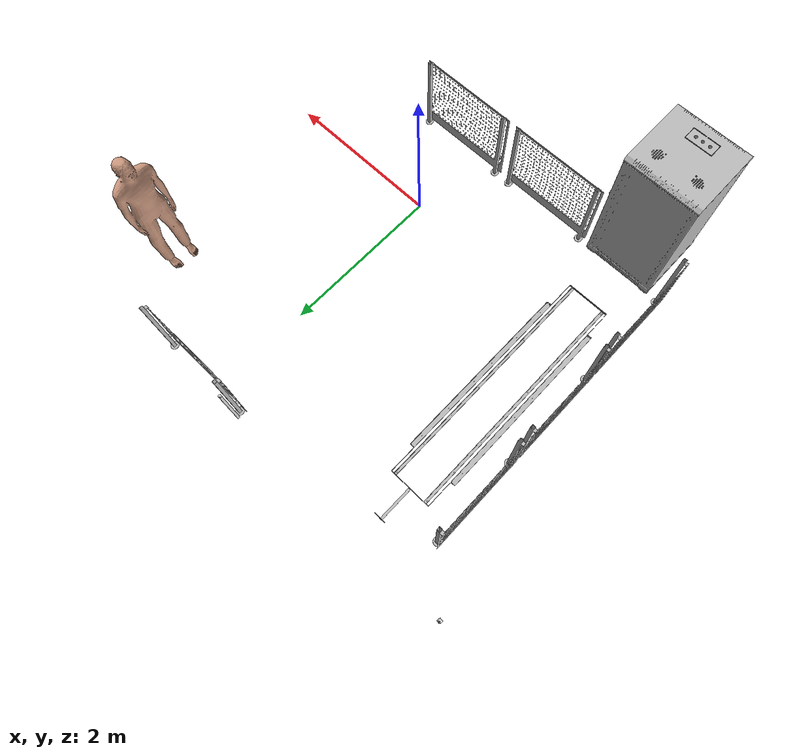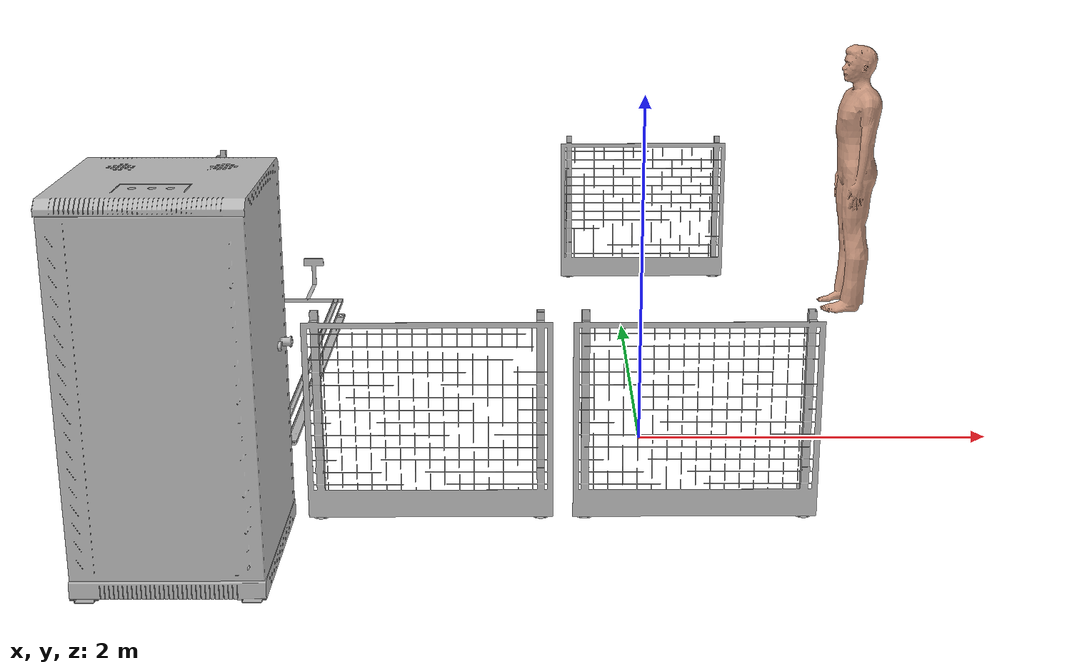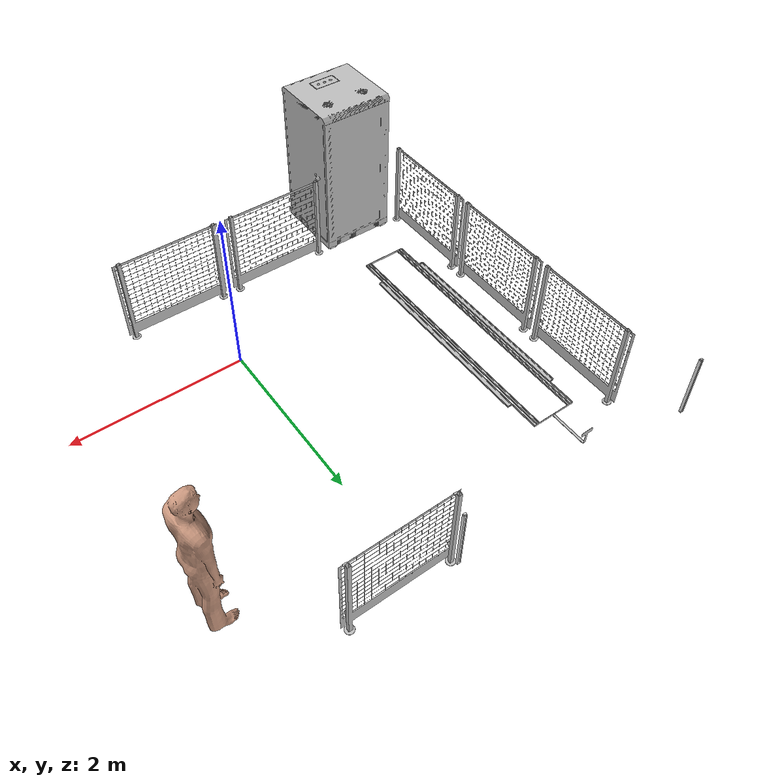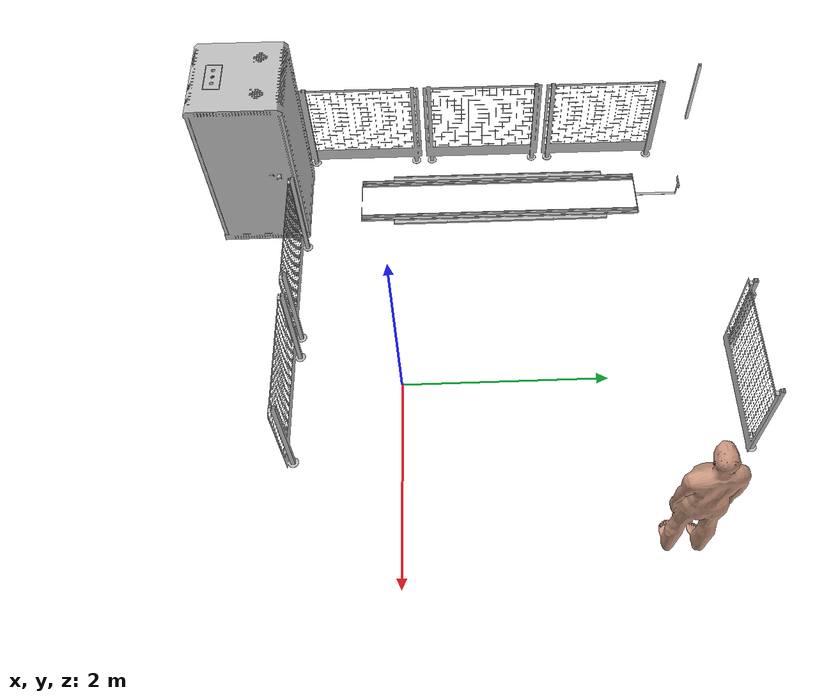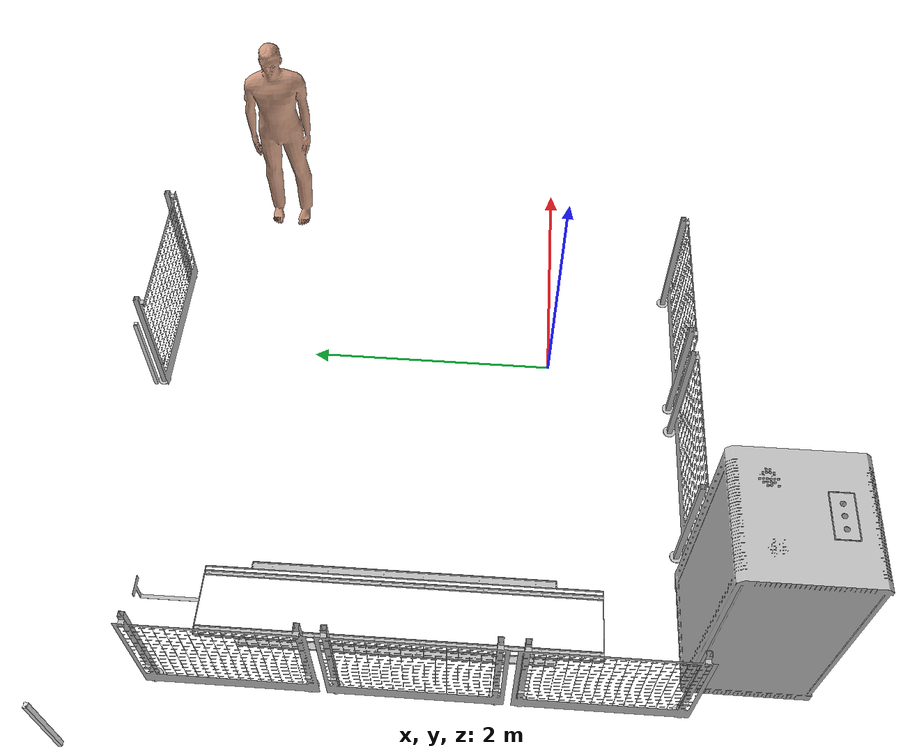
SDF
<?xml version="1.0" ?>
<sdf version="1.6">
  <world name="ifarlab">
    <physics name="ode" type="ignored">
      <max_step_size>0.01</max_step_size>
      <real_time_factor>1.0</real_time_factor>
    </physics>
    <plugin
      filename="gz-sim-physics-system"
      name="gz::sim::systems::Physics">
    </plugin>
    <plugin
      filename="gz-sim-user-commands-system"
      name="gz::sim::systems::UserCommands">
    </plugin>
    <plugin
      filename="gz-sim-scene-broadcaster-system"
      name="gz::sim::systems::SceneBroadcaster">
    </plugin>
    <plugin
      filename="gz-sim-contact-system"
      name="gz::sim::systems::Contact">
    </plugin>

    <light type="directional" name="sun">
      <cast_shadows>true</cast_shadows>
      <pose>0 0 10 0 0 0</pose>
      <diffuse>0.8 0.8 0.8 1</diffuse>
      <specular>0.2 0.2 0.2 1</specular>
      <attenuation>
        <range>1000</range>
        <constant>0.9</constant>
        <linear>0.01</linear>
        <quadratic>0.001</quadratic>
      </attenuation>
      <direction>-0.5 0.1 -0.9</direction>
    </light>

    <!-- ifarlab ray - robot hareket rayı -->
    <model name="ifarlab_ray">
      <static>true</static>
      <pose>0 0 0 0 0 0</pose>
      <link name="ifarlab_ray_link">
        <collision name="collision">
          <geometry>
            <mesh>
              <uri>file:///home/cem/colcon_ws/src/mobile_manipulator_description/meshes/environment/ifarlab_ray.stl</uri>
              <scale>0.001 0.001 0.001</scale>
            </mesh>
          </geometry>
        </collision>
        <visual name="visual">
          <geometry>
            <mesh>
              <uri>file:///home/cem/colcon_ws/src/mobile_manipulator_description/meshes/environment/ifarlab_ray.stl</uri>
              <scale>0.001 0.001 0.001</scale>
            </mesh>
          </geometry>
          <material>
            <ambient>0.75 0.75 0.75 1</ambient>
            <diffuse>0.75 0.75 0.75 1</diffuse>
            <specular>0.1 0.1 0.1 1</specular>
          </material>
        </visual>
      </link>
    </model>

    <!-- Barrier - ana koruma bariyeri -->
    <model name="barrier">
      <static>true</static>
      <pose>0 0 0 0 0 0</pose>
      <link name="barrier_link">
        <collision name="collision">
          <geometry>
            <mesh>
              <uri>file:///home/cem/colcon_ws/src/mobile_manipulator_description/meshes/environment/barrier.stl</uri>
              <scale>0.001 0.001 0.001</scale>
            </mesh>
          </geometry>
        </collision>
        <visual name="visual">
          <geometry>
            <mesh>
              <uri>file:///home/cem/colcon_ws/src/mobile_manipulator_description/meshes/environment/barrier.stl</uri>
              <scale>0.001 0.001 0.001</scale>
            </mesh>
          </geometry>
          <material>
            <ambient>0.75 0.75 0.75 1</ambient>
            <diffuse>0.75 0.75 0.75 1</diffuse>
            <specular>0.1 0.1 0.1 1</specular>
          </material>
        </visual>
      </link>
    </model>

    <!-- Barrier yakın kabinet -->
    <model name="barrier_closekabinet">
      <static>true</static>
      <pose>0 0 0 0 0 0</pose>
      <link name="barrier_closekabinet_link">
        <collision name="collision">
          <geometry>
            <mesh>
              <uri>file:///home/cem/colcon_ws/src/mobile_manipulator_description/meshes/environment/barrier_closekabinet.stl</uri>
              <scale>0.001 0.001 0.001</scale>
            </mesh>
          </geometry>
        </collision>
        <visual name="visual">
          <geometry>
            <mesh>
              <uri>file:///home/cem/colcon_ws/src/mobile_manipulator_description/meshes/environment/barrier_closekabinet.stl</uri>
              <scale>0.001 0.001 0.001</scale>
            </mesh>
          </geometry>
          <material>
            <ambient>0.75 0.75 0.75 1</ambient>
            <diffuse>0.75 0.75 0.75 1</diffuse>
            <specular>0.1 0.1 0.1 1</specular>
          </material>
        </visual>
      </link>
    </model>

    <!-- Barrier yakın masa -->
    <model name="barrier_closetable">
      <static>true</static>
      <pose>0 0 0 0 0 0</pose>
      <link name="barrier_closetable_link">
        <collision name="collision">
          <geometry>
            <mesh>
              <uri>file:///home/cem/colcon_ws/src/mobile_manipulator_description/meshes/environment/barrier_closetable.stl</uri>
              <scale>0.001 0.001 0.001</scale>
            </mesh>
          </geometry>
        </collision>
        <visual name="visual">
          <geometry>
            <mesh>
              <uri>file:///home/cem/colcon_ws/src/mobile_manipulator_description/meshes/environment/barrier_closetable.stl</uri>
              <scale>0.001 0.001 0.001</scale>
            </mesh>
          </geometry>
          <material>
            <ambient>0.75 0.75 0.75 1</ambient>
            <diffuse>0.75 0.75 0.75 1</diffuse>
            <specular>0.1 0.1 0.1 1</specular>
          </material>
        </visual>
      </link>
    </model>

    <!-- Barrier Kawasaki 1 -->
    <model name="barrier_kaw1">
      <static>true</static>
      <pose>0 0 0 0 0 0</pose>
      <link name="barrier_kaw1_link">
        <collision name="collision">
          <geometry>
            <mesh>
              <uri>file:///home/cem/colcon_ws/src/mobile_manipulator_description/meshes/environment/barrier_kaw1.stl</uri>
              <scale>0.001 0.001 0.001</scale>
            </mesh>
          </geometry>
        </collision>
        <visual name="visual">
          <geometry>
            <mesh>
              <uri>file:///home/cem/colcon_ws/src/mobile_manipulator_description/meshes/environment/barrier_kaw1.stl</uri>
              <scale>0.001 0.001 0.001</scale>
            </mesh>
          </geometry>
          <material>
            <ambient>0.75 0.75 0.75 1</ambient>
            <diffuse>0.75 0.75 0.75 1</diffuse>
            <specular>0.1 0.1 0.1 1</specular>
          </material>
        </visual>
      </link>
    </model>

    <!-- Barrier Kawasaki 2 -->
    <model name="barrier_kaw2">
      <static>true</static>
      <pose>0 0 0 0 0 0</pose>
      <link name="barrier_kaw2_link">
        <collision name="collision">
          <geometry>
            <mesh>
              <uri>file:///home/cem/colcon_ws/src/mobile_manipulator_description/meshes/environment/barrier_kaw2.stl</uri>
              <scale>0.001 0.001 0.001</scale>
            </mesh>
          </geometry>
        </collision>
        <visual name="visual">
          <geometry>
            <mesh>
              <uri>file:///home/cem/colcon_ws/src/mobile_manipulator_description/meshes/environment/barrier_kaw2.stl</uri>
              <scale>0.001 0.001 0.001</scale>
            </mesh>
          </geometry>
          <material>
            <ambient>0.75 0.75 0.75 1</ambient>
            <diffuse>0.75 0.75 0.75 1</diffuse>
            <specular>0.1 0.1 0.1 1</specular>
          </material>
        </visual>
      </link>
    </model>

    <!-- Barrier Kawasaki 3 -->
    <model name="barrier_kaw3">
      <static>true</static>
      <pose>0 0 0 0 0 0</pose>
      <link name="barrier_kaw3_link">
        <collision name="collision">
          <geometry>
            <mesh>
              <uri>file:///home/cem/colcon_ws/src/mobile_manipulator_description/meshes/environment/barrier_kaw3.stl</uri>
              <scale>0.001 0.001 0.001</scale>
            </mesh>
          </geometry>
        </collision>
        <visual name="visual">
          <geometry>
            <mesh>
              <uri>file:///home/cem/colcon_ws/src/mobile_manipulator_description/meshes/environment/barrier_kaw3.stl</uri>
              <scale>0.001 0.001 0.001</scale>
            </mesh>
          </geometry>
          <material>
            <ambient>0.75 0.75 0.75 1</ambient>
            <diffuse>0.75 0.75 0.75 1</diffuse>
            <specular>0.1 0.1 0.1 1</specular>
          </material>
        </visual>
      </link>
    </model>

    <!-- Kabinet - kontrol kabini -->
    <model name="kabinet">
      <static>true</static>
      <pose>0 0 0 0 0 0</pose>
      <link name="kabinet_link">
        <collision name="collision">
          <geometry>
            <mesh>
              <uri>file:///home/cem/colcon_ws/src/mobile_manipulator_description/meshes/environment/Kabinet.stl</uri>
              <scale>0.001 0.001 0.001</scale>
            </mesh>
          </geometry>
        </collision>
        <visual name="visual">
          <geometry>
            <mesh>
              <uri>file:///home/cem/colcon_ws/src/mobile_manipulator_description/meshes/environment/Kabinet.stl</uri>
              <scale>0.001 0.001 0.001</scale>
            </mesh>
          </geometry>
          <material>
            <ambient>0.75 0.75 0.75 1</ambient>
            <diffuse>0.75 0.75 0.75 1</diffuse>
            <specular>0.1 0.1 0.1 1</specular>
          </material>
        </visual>
      </link>
    </model>

    <!-- Light curtain - ışık perdesi -->
    <model name="light_curtain">
      <static>true</static>
      <pose>0 0 0 0 0 0</pose>
      <link name="light_curtain_link">
        <collision name="collision">
          <geometry>
            <mesh>
              <uri>file:///home/cem/colcon_ws/src/mobile_manipulator_description/meshes/environment/light_curtain_3m.stl</uri>
              <scale>0.001 0.001 0.001</scale>
            </mesh>
          </geometry>
        </collision>
        <visual name="visual">
          <geometry>
            <mesh>
              <uri>file:///home/cem/colcon_ws/src/mobile_manipulator_description/meshes/environment/light_curtain_3m.stl</uri>
              <scale>0.001 0.001 0.001</scale>
            </mesh>
          </geometry>
          <material>
            <ambient>0.9 0.9 0.9 1</ambient>
            <diffuse>0.9 0.9 0.9 1</diffuse>
            <specular>0.2 0.2 0.2 1</specular>
          </material>
        </visual>
      </link>
    </model>

    <!-- Standing human - duran insan modeli -->
    <model name="human">
      <static>true</static>
      <pose>0 0 0 0 0 0</pose>
      <link name="human_link">
        <collision name="collision">
          <geometry>
            <mesh>
              <uri>file:///home/cem/colcon_ws/src/mobile_manipulator_description/meshes/environment/standing.stl</uri>
              <scale>0.001 0.001 0.001</scale>
            </mesh>
          </geometry>
        </collision>
        <visual name="visual">
          <geometry>
            <mesh>
              <uri>file:///home/cem/colcon_ws/src/mobile_manipulator_description/meshes/environment/standing.stl</uri>
              <scale>0.001 0.001 0.001</scale>
            </mesh>
          </geometry>
          <material>
            <ambient>0.8 0.6 0.5 1</ambient>
            <diffuse>0.8 0.6 0.5 1</diffuse>
            <specular>0.1 0.1 0.1 1</specular>
          </material>
        </visual>
      </link>
    </model>

  </world>
</sdf>
